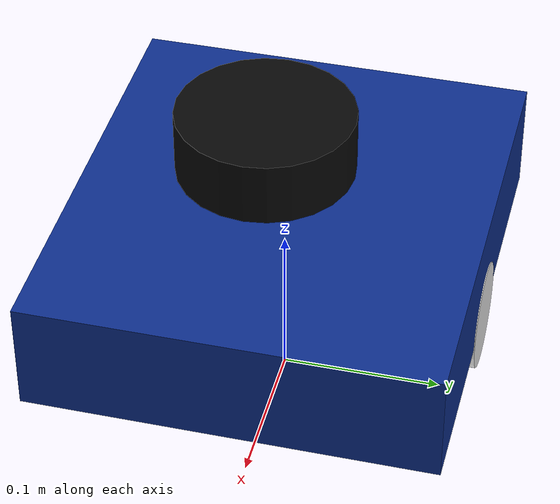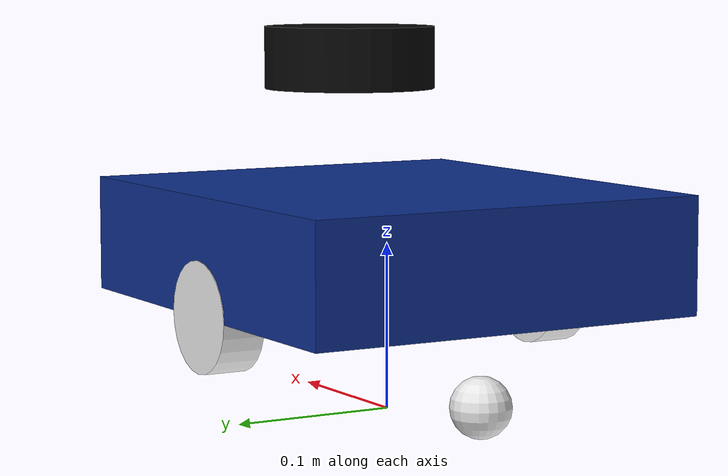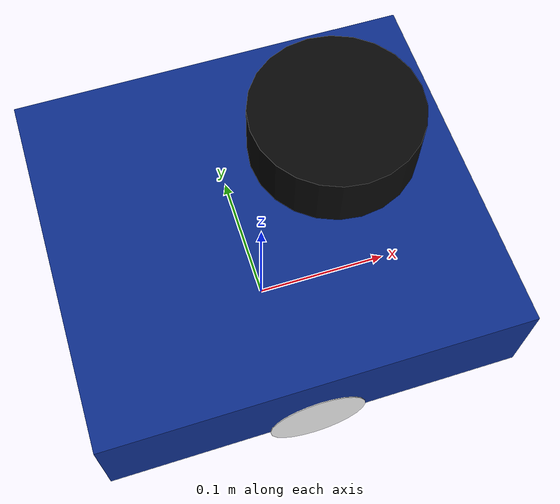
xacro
<?xml version="1.0"?>
<robot xmlns:xacro="http://www.ros.org/wiki/xacro" name="ros_slam_robot">
  <xacro:property name="wheel_radius" value="0.033"/>
  <xacro:property name="wheel_width" value="0.026"/>
  <xacro:property name="wheel_separation" value="0.225"/>

  <material name="body_blue"><color rgba="0.05 0.18 0.55 1"/></material>
  <material name="wheel_white"><color rgba="0.92 0.92 0.92 1"/></material>
  <material name="lidar_black"><color rgba="0.03 0.03 0.03 1"/></material>

  <link name="base_footprint"/>

  <joint name="base_joint" type="fixed">
    <parent link="base_footprint"/>
    <child link="base_link"/>
    <origin xyz="0 0 0.065"/>
  </joint>

  <link name="base_link">
    <visual>
      <origin xyz="0 0 0.035"/>
      <geometry><box size="0.28 0.25 0.07"/></geometry>
      <material name="body_blue"/>
    </visual>
    <collision>
      <origin xyz="0 0 0.035"/>
      <geometry><box size="0.28 0.25 0.07"/></geometry>
    </collision>
    <inertial>
      <mass value="2.5"/>
      <origin xyz="0 0 0.035"/>
      <inertia ixx="0.014" ixy="0" ixz="0" iyy="0.018" iyz="0" izz="0.027"/>
    </inertial>
  </link>

  <xacro:macro name="wheel" params="side y">
    <link name="${side}_wheel_link">
      <visual>
        <geometry><cylinder radius="${wheel_radius}" length="${wheel_width}"/></geometry>
        <material name="wheel_white"/>
      </visual>
      <collision>
        <geometry><cylinder radius="${wheel_radius}" length="${wheel_width}"/></geometry>
      </collision>
      <inertial>
        <mass value="0.12"/>
        <inertia ixx="0.00008" ixy="0" ixz="0" iyy="0.00008" iyz="0" izz="0.00013"/>
      </inertial>
    </link>
    <joint name="${side}_wheel_joint" type="continuous">
      <parent link="base_link"/>
      <child link="${side}_wheel_link"/>
      <origin xyz="0 ${y} 0" rpy="${pi/2} 0 0"/>
      <axis xyz="0 0 1"/>
    </joint>
  </xacro:macro>

  <xacro:wheel side="left" y="${wheel_separation/2}"/>
  <xacro:wheel side="right" y="${-wheel_separation/2}"/>

  <link name="caster_link">
    <visual>
      <geometry><sphere radius="0.018"/></geometry>
      <material name="wheel_white"/>
    </visual>
  </link>
  <joint name="caster_joint" type="fixed">
    <parent link="base_link"/>
    <child link="caster_link"/>
    <origin xyz="-0.105 0 -0.047"/>
  </joint>

  <link name="laser">
    <visual>
      <geometry><cylinder radius="0.052" length="0.038"/></geometry>
      <material name="lidar_black"/>
    </visual>
  </link>
  <joint name="laser_joint" type="fixed">
    <parent link="base_link"/>
    <child link="laser"/>
    <origin xyz="0.045 0 0.145"/>
  </joint>
</robot>
